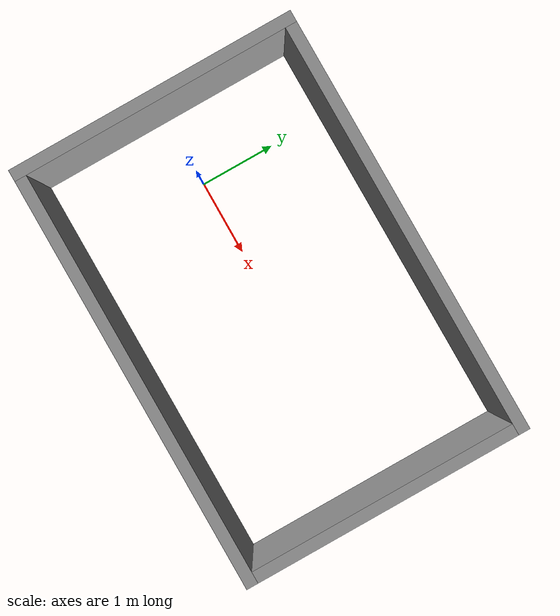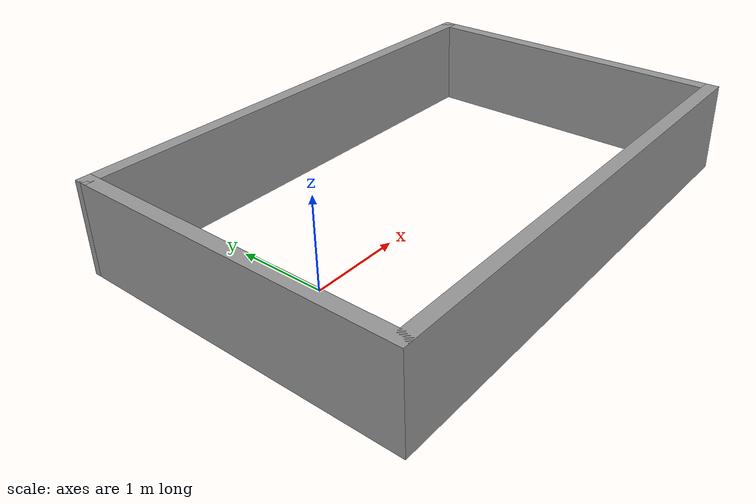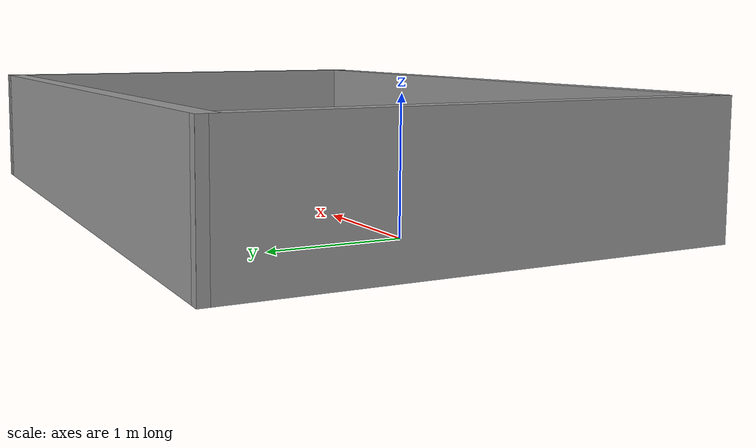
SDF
<?xml version='1.0'?>
<sdf version='1.6'>
  <model name='pit'>
    <pose frame=''>1.7 0.000139 0 0 -0 0</pose>
    <link name='Wall_0'>
      <collision name='Wall_0_Collision'>
        <geometry>
          <box>
            <size>3.73 0.15 1</size>
          </box>
        </geometry>
        <pose frame=''>0 0 0.5 0 -0 0</pose>
      </collision>
      <visual name='Wall_0_Visual'>
        <pose frame=''>0 0 0.5 0 -0 0</pose>
        <geometry>
          <box>
            <size>3.73 0.15 1</size>
          </box>
        </geometry>
        <material>
          <script>
            <uri>file://media/materials/scripts/gazebo.material</uri>
            <name>Gazebo/Grey</name>
          </script>
          <ambient>1 1 1 1</ambient>
        </material>
        <meta>
          <layer>0</layer>
        </meta>
      </visual>
      <pose frame=''>-2.7 -0.010139 0 0 -0 -1.5708</pose>
    </link>
    <link name='Wall_1'>
      <collision name='Wall_1_Collision'>
        <geometry>
          <box>
            <size>5.55 0.15 1</size>
          </box>
        </geometry>
        <pose frame=''>0 0 0.5 0 -0 0</pose>
      </collision>
      <visual name='Wall_1_Visual'>
        <pose frame=''>0 0 0.5 0 -0 0</pose>
        <geometry>
          <box>
            <size>5.55 0.15 1</size>
          </box>
        </geometry>
        <material>
          <script>
            <uri>file://media/materials/scripts/gazebo.material</uri>
            <name>Gazebo/Grey</name>
          </script>
          <ambient>1 1 1 1</ambient>
        </material>
        <meta>
          <layer>0</layer>
        </meta>
      </visual>
      <pose frame=''>0 -1.80014 0 0 -0 0</pose>
    </link>
    <link name='Wall_3'>
      <collision name='Wall_3_Collision'>
        <geometry>
          <box>
            <size>5.55004 0.15 1</size>
          </box>
        </geometry>
        <pose frame=''>0 0 0.5 0 -0 0</pose>
      </collision>
      <visual name='Wall_3_Visual'>
        <pose frame=''>0 0 0.5 0 -0 0</pose>
        <geometry>
          <box>
            <size>5.55004 0.15 1</size>
          </box>
        </geometry>
        <material>
          <script>
            <uri>file://media/materials/scripts/gazebo.material</uri>
            <name>Gazebo/Grey</name>
          </script>
          <ambient>1 1 1 1</ambient>
        </material>
        <meta>
          <layer>0</layer>
        </meta>
      </visual>
      <pose frame=''>0 1.78986 0 0 -0 0.003704</pose>
    </link>
    <link name='Wall_4'>
      <collision name='Wall_4_Collision'>
        <geometry>
          <box>
            <size>3.75 0.15 1</size>
          </box>
        </geometry>
        <pose frame=''>0 0 0.5 0 -0 0</pose>
      </collision>
      <visual name='Wall_4_Visual'>
        <pose frame=''>0 0 0.5 0 -0 0</pose>
        <geometry>
          <box>
            <size>3.75 0.15 1</size>
          </box>
        </geometry>
        <material>
          <script>
            <uri>file://media/materials/scripts/gazebo.material</uri>
            <name>Gazebo/Grey</name>
          </script>
          <ambient>1 1 1 1</ambient>
        </material>
        <meta>
          <layer>0</layer>
        </meta>
      </visual>
      <pose frame=''>2.7 -0.000139 0 0 -0 -1.5708</pose>
    </link>
    <static>1</static>
  </model>
</sdf>
